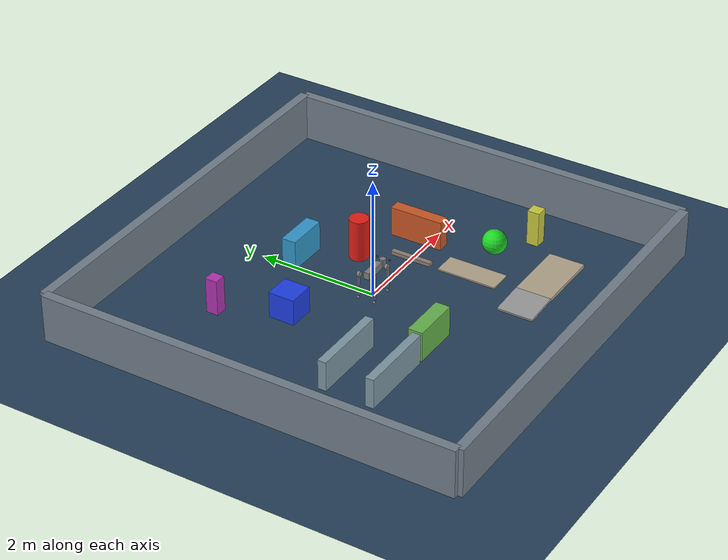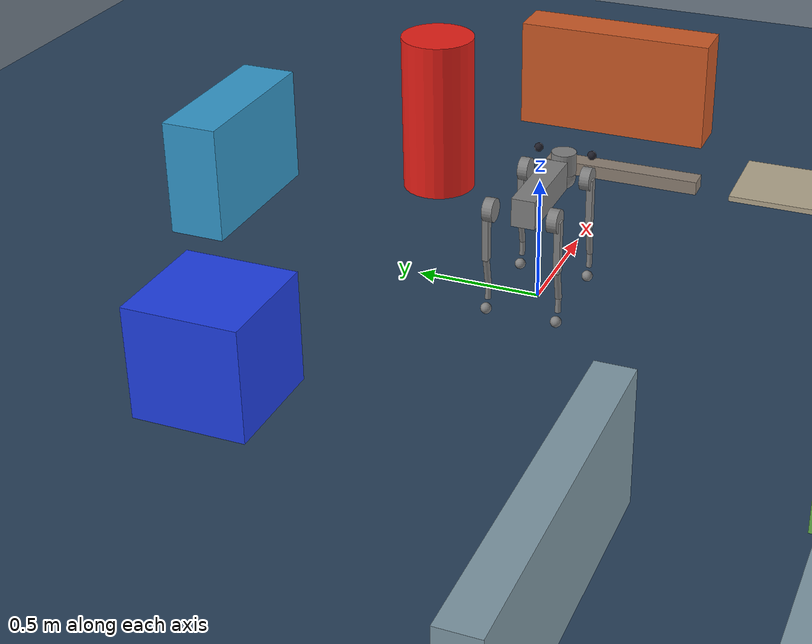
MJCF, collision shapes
<?xml version='1.0' encoding='utf-8'?>
<mujoco model="Born Wired - sensory arena">
  <compiler angle="radian" meshdir="unitree_go2/assets" autolimits="true" />
  <option cone="elliptic" impratio="100" />
  <default>
    <default class="go2">
      <geom friction="0.6" margin="0.001" condim="1" />
      <joint axis="0 1 0" damping="2" armature="0.01" frictionloss="0.2" />
      <motor ctrlrange="-23.7 23.7" />
      <default class="abduction">
        <joint axis="1 0 0" range="-1.0472 1.0472" />
      </default>
      <default class="hip">
        <default class="front_hip">
          <joint range="-1.5708 3.4907" />
        </default>
        <default class="back_hip">
          <joint range="-0.5236 4.5379" />
        </default>
      </default>
      <default class="knee">
        <joint range="-2.7227 -0.83776" />
        <motor ctrlrange="-45.43 45.43" />
      </default>
      <default class="visual">
        <geom type="mesh" contype="0" conaffinity="0" group="2" />
      </default>
      <default class="collision">
        <geom group="3" />
        <default class="foot">
          <geom size="0.022" pos="-0.002 0 -0.213" priority="1" solimp="0.015 1 0.022" condim="6" friction="0.8 0.02 0.01" />
        </default>
      </default>
    </default>
  </default>
  <asset>
    <material name="metal" rgba=".9 .95 .95 1" />
    <material name="black" rgba="0 0 0 1" />
    <material name="white" rgba="1 1 1 1" />
    <material name="gray" rgba="0.671705 0.692426 0.774270 1" />
    <mesh file="base_0.obj" />
    <mesh file="base_1.obj" />
    <mesh file="base_2.obj" />
    <mesh file="base_3.obj" />
    <mesh file="base_4.obj" />
    <mesh file="hip_0.obj" />
    <mesh file="hip_1.obj" />
    <mesh file="thigh_0.obj" />
    <mesh file="thigh_1.obj" />
    <mesh file="thigh_mirror_0.obj" />
    <mesh file="thigh_mirror_1.obj" />
    <mesh file="calf_0.obj" />
    <mesh file="calf_1.obj" />
    <mesh file="calf_mirror_0.obj" />
    <mesh file="calf_mirror_1.obj" />
    <mesh file="foot.obj" />
    <texture type="skybox" builtin="gradient" rgb1="0.3 0.5 0.7" rgb2="0 0 0" width="512" height="3072" />
    <texture type="2d" name="groundplane" builtin="checker" mark="edge" rgb1="0.2 0.3 0.4" rgb2="0.1 0.2 0.3" markrgb="0.8 0.8 0.8" width="300" height="300" />
    <material name="groundplane" texture="groundplane" texuniform="true" texrepeat="5 5" reflectance="0.2" />
    <texture name="irregular" type="2d" file="stereo_texture.png" />
    <material name="textured" texture="irregular" texrepeat="1 1" texuniform="false" />
    <texture name="qrwall" type="2d" file="wall_qr.png" />
    <material name="qrwall" texture="qrwall" texrepeat="1 1" texuniform="false" />
  </asset>
  <worldbody>
    <body name="base" pos="0 0 0.445" childclass="go2">
      <inertial pos="0.021112 0 -0.005366" quat="-0.000543471 0.713435 -0.00173769 0.700719" mass="6.921" diaginertia="0.107027 0.0980771 0.0244531" />
      <freejoint />
      <geom mesh="base_0" material="black" class="visual" />
      <geom mesh="base_1" material="black" class="visual" />
      <geom mesh="base_2" material="black" class="visual" />
      <geom mesh="base_3" material="white" class="visual" />
      <geom mesh="base_4" material="gray" class="visual" />
      <geom size="0.1881 0.04675 0.057" type="box" class="collision" />
      <geom size="0.05 0.045" pos="0.285 0 0.01" type="cylinder" class="collision" />
      <geom size="0.047" pos="0.293 0 -0.06" class="collision" />
      <site name="imu" pos="-0.02557 0 0.04232" />
      <body name="FL_hip" pos="0.1934 0.0465 0">
        <inertial pos="-0.0054 0.00194 -0.000105" quat="0.497014 0.499245 0.505462 0.498237" mass="0.678" diaginertia="0.00088403 0.000596003 0.000479967" />
        <joint name="FL_hip_joint" class="abduction" />
        <geom mesh="hip_0" material="metal" class="visual" />
        <geom mesh="hip_1" material="gray" class="visual" />
        <geom size="0.046 0.02" pos="0 0.08 0" quat="1 1 0 0" type="cylinder" class="collision" />
        <body name="FL_thigh" pos="0 0.0955 0">
          <inertial pos="-0.00374 -0.0223 -0.0327" quat="0.829533 0.0847635 -0.0200632 0.551623" mass="1.152" diaginertia="0.00594973 0.00584149 0.000878787" />
          <joint name="FL_thigh_joint" class="front_hip" />
          <geom mesh="thigh_0" material="metal" class="visual" />
          <geom mesh="thigh_1" material="gray" class="visual" />
          <geom size="0.1065 0.01225 0.017" pos="0 0 -0.1065" quat="0.707107 0 0.707107 0" type="box" class="collision" />
          <body name="FL_calf" pos="0 0 -0.213">
            <inertial pos="0.00629595 -0.000622121 -0.141417" quat="0.710672 0.00154099 -0.00450087 0.703508" mass="0.241352" diaginertia="0.0014901 0.00146356 5.31397e-05" />
            <joint name="FL_calf_joint" class="knee" />
            <geom mesh="calf_0" material="gray" class="visual" />
            <geom mesh="calf_1" material="black" class="visual" />
            <geom size="0.012 0.06" pos="0.008 0 -0.06" quat="0.994493 0 -0.104807 0" type="cylinder" class="collision" />
            <geom size="0.011 0.0325" pos="0.02 0 -0.148" quat="0.999688 0 0.0249974 0" type="cylinder" class="collision" />
            <geom pos="0 0 -0.213" mesh="foot" class="visual" material="black" />
            <geom name="FL" class="foot" />
          </body>
        </body>
      </body>
      <body name="FR_hip" pos="0.1934 -0.0465 0">
        <inertial pos="-0.0054 -0.00194 -0.000105" quat="0.498237 0.505462 0.499245 0.497014" mass="0.678" diaginertia="0.00088403 0.000596003 0.000479967" />
        <joint name="FR_hip_joint" class="abduction" />
        <geom mesh="hip_0" material="metal" class="visual" quat="4.63268e-05 1 0 0" />
        <geom mesh="hip_1" material="gray" class="visual" quat="4.63268e-05 1 0 0" />
        <geom size="0.046 0.02" pos="0 -0.08 0" quat="0.707107 0.707107 0 0" type="cylinder" class="collision" />
        <body name="FR_thigh" pos="0 -0.0955 0">
          <inertial pos="-0.00374 0.0223 -0.0327" quat="0.551623 -0.0200632 0.0847635 0.829533" mass="1.152" diaginertia="0.00594973 0.00584149 0.000878787" />
          <joint name="FR_thigh_joint" class="front_hip" />
          <geom mesh="thigh_mirror_0" material="metal" class="visual" />
          <geom mesh="thigh_mirror_1" material="gray" class="visual" />
          <geom size="0.1065 0.01225 0.017" pos="0 0 -0.1065" quat="0.707107 0 0.707107 0" type="box" class="collision" />
          <body name="FR_calf" pos="0 0 -0.213">
            <inertial pos="0.00629595 0.000622121 -0.141417" quat="0.703508 -0.00450087 0.00154099 0.710672" mass="0.241352" diaginertia="0.0014901 0.00146356 5.31397e-05" />
            <joint name="FR_calf_joint" class="knee" />
            <geom mesh="calf_mirror_0" material="gray" class="visual" />
            <geom mesh="calf_mirror_1" material="black" class="visual" />
            <geom size="0.013 0.06" pos="0.01 0 -0.06" quat="0.995004 0 -0.0998334 0" type="cylinder" class="collision" />
            <geom size="0.011 0.0325" pos="0.02 0 -0.148" quat="0.999688 0 0.0249974 0" type="cylinder" class="collision" />
            <geom pos="0 0 -0.213" mesh="foot" class="visual" material="black" />
            <geom name="FR" class="foot" />
          </body>
        </body>
      </body>
      <body name="RL_hip" pos="-0.1934 0.0465 0">
        <inertial pos="0.0054 0.00194 -0.000105" quat="0.505462 0.498237 0.497014 0.499245" mass="0.678" diaginertia="0.00088403 0.000596003 0.000479967" />
        <joint name="RL_hip_joint" class="abduction" />
        <geom mesh="hip_0" material="metal" class="visual" quat="4.63268e-05 0 1 0" />
        <geom mesh="hip_1" material="gray" class="visual" quat="4.63268e-05 0 1 0" />
        <geom size="0.046 0.02" pos="0 0.08 0" quat="0.707107 0.707107 0 0" type="cylinder" class="collision" />
        <body name="RL_thigh" pos="0 0.0955 0">
          <inertial pos="-0.00374 -0.0223 -0.0327" quat="0.829533 0.0847635 -0.0200632 0.551623" mass="1.152" diaginertia="0.00594973 0.00584149 0.000878787" />
          <joint name="RL_thigh_joint" class="back_hip" />
          <geom mesh="thigh_0" material="metal" class="visual" />
          <geom mesh="thigh_1" material="gray" class="visual" />
          <geom size="0.1065 0.01225 0.017" pos="0 0 -0.1065" quat="0.707107 0 0.707107 0" type="box" class="collision" />
          <body name="RL_calf" pos="0 0 -0.213">
            <inertial pos="0.00629595 -0.000622121 -0.141417" quat="0.710672 0.00154099 -0.00450087 0.703508" mass="0.241352" diaginertia="0.0014901 0.00146356 5.31397e-05" />
            <joint name="RL_calf_joint" class="knee" />
            <geom mesh="calf_0" material="gray" class="visual" />
            <geom mesh="calf_1" material="black" class="visual" />
            <geom size="0.013 0.06" pos="0.01 0 -0.06" quat="0.995004 0 -0.0998334 0" type="cylinder" class="collision" />
            <geom size="0.011 0.0325" pos="0.02 0 -0.148" quat="0.999688 0 0.0249974 0" type="cylinder" class="collision" />
            <geom pos="0 0 -0.213" mesh="foot" class="visual" material="black" />
            <geom name="RL" class="foot" />
          </body>
        </body>
      </body>
      <body name="RR_hip" pos="-0.1934 -0.0465 0">
        <inertial pos="0.0054 -0.00194 -0.000105" quat="0.499245 0.497014 0.498237 0.505462" mass="0.678" diaginertia="0.00088403 0.000596003 0.000479967" />
        <joint name="RR_hip_joint" class="abduction" />
        <geom mesh="hip_0" material="metal" class="visual" quat="2.14617e-09 4.63268e-05 4.63268e-05 -1" />
        <geom mesh="hip_1" material="gray" class="visual" quat="2.14617e-09 4.63268e-05 4.63268e-05 -1" />
        <geom size="0.046 0.02" pos="0 -0.08 0" quat="0.707107 0.707107 0 0" type="cylinder" class="collision" />
        <body name="RR_thigh" pos="0 -0.0955 0">
          <inertial pos="-0.00374 0.0223 -0.0327" quat="0.551623 -0.0200632 0.0847635 0.829533" mass="1.152" diaginertia="0.00594973 0.00584149 0.000878787" />
          <joint name="RR_thigh_joint" class="back_hip" />
          <geom mesh="thigh_mirror_0" material="metal" class="visual" />
          <geom mesh="thigh_mirror_1" material="gray" class="visual" />
          <geom size="0.1065 0.01225 0.017" pos="0 0 -0.1065" quat="0.707107 0 0.707107 0" type="box" class="collision" />
          <body name="RR_calf" pos="0 0 -0.213">
            <inertial pos="0.00629595 0.000622121 -0.141417" quat="0.703508 -0.00450087 0.00154099 0.710672" mass="0.241352" diaginertia="0.0014901 0.00146356 5.31397e-05" />
            <joint name="RR_calf_joint" class="knee" />
            <geom mesh="calf_mirror_0" material="gray" class="visual" />
            <geom mesh="calf_mirror_1" material="black" class="visual" />
            <geom size="0.013 0.06" pos="0.01 0 -0.06" quat="0.995004 0 -0.0998334 0" type="cylinder" class="collision" />
            <geom size="0.011 0.0325" pos="0.02 0 -0.148" quat="0.999688 0 0.0249974 0" type="cylinder" class="collision" />
            <geom pos="0 0 -0.213" mesh="foot" class="visual" material="black" />
            <geom name="RR" class="foot" />
          </body>
        </body>
      </body>
      <body name="eye_left" pos=".30 0.11 .05">
        <joint name="eye_left_yaw_joint" type="hinge" axis="0 0 1" range="-.6 .6" damping=".06" armature=".001" frictionloss="0" />
        <joint name="eye_left_pitch_joint" type="hinge" axis="0 1 0" range="-.45 .45" damping=".06" armature=".001" frictionloss="0" />
        <geom name="eye_left_ball" type="sphere" size=".018" density="800" contype="0" conaffinity="0" group="2" rgba=".12 .12 .16 1" />
        <camera name="eye_left" pos="0 0 0" quat="-0.5 -0.5 0.5 0.5" fovy="60" />
      </body>
      <body name="eye_right" pos=".30 -0.11 .05">
        <joint name="eye_right_yaw_joint" type="hinge" axis="0 0 1" range="-.6 .6" damping=".06" armature=".001" frictionloss="0" />
        <joint name="eye_right_pitch_joint" type="hinge" axis="0 1 0" range="-.45 .45" damping=".06" armature=".001" frictionloss="0" />
        <geom name="eye_right_ball" type="sphere" size=".018" density="800" contype="0" conaffinity="0" group="2" rgba=".12 .12 .16 1" />
        <camera name="eye_right" pos="0 0 0" quat="-0.5 -0.5 0.5 0.5" fovy="60" />
      </body>
    </body>
    <light pos="0 0 1.5" dir="0 0 -1" directional="true" />
    <geom name="floor" size="0 0 0.05" type="plane" material="groundplane" />
    <geom name="front_block" type="box" pos="1.7 .20 .25" size=".10 .45 .25" rgba=".8 .35 .15 1" material="qrwall" />
    <geom name="left_block" type="box" pos=".3 1.5 .25" size=".35 .12 .25" rgba=".2 .6 .8 1" material="qrwall" />
    <geom name="right_block" type="box" pos="-.7 -1.4 .25" size=".4 .12 .25" rgba=".4 .7 .3 1" material="qrwall" />
    <geom name="east_wall" type="box" pos="3.5 0 .4" size=".08 3.5 .4" rgba=".45 .5 .55 1" material="qrwall" />
    <geom name="west_wall" type="box" pos="-3.5 0 .4" size=".08 3.5 .4" rgba=".45 .5 .55 1" material="qrwall" />
    <geom name="north_wall" type="box" pos="0 3.5 .4" size="3.5 .08 .4" rgba=".45 .5 .55 1" material="qrwall" />
    <geom name="south_wall" type="box" pos="0 -3.5 .4" size="3.5 .08 .4" rgba=".45 .5 .55 1" material="qrwall" />
    <geom name="green_target" type="sphere" pos="2 -1 .20" size=".20" rgba=".12 .85 .15 1" material="textured" />
    <geom name="red_pillar" type="cylinder" pos=".8 .75 .35" size=".16 .35" rgba=".9 .12 .09 1" material="textured" />
    <geom name="blue_box" type="box" pos="-1.1 .8 .22" size=".22 .22 .22" rgba=".12 .25 .9 1" material="textured" />
    <geom name="sound_low" type="box" pos="2.6 -1.4 .3" size=".10 .10 .3" rgba=".8 .8 .25 1" material="textured" />
    <geom name="sound_high" type="box" pos="-1.6 1.8 .3" size=".10 .10 .3" rgba=".7 .2 .7 1" material="textured" />
    <geom name="low_step" type="box" pos="1.3 -1 .012" size=".20 .5 .012" rgba=".7 .65 .55 1" material="textured" />
    <geom name="curb" type="box" pos="1.15 0 .03" size=".045 .35 .03" rgba=".55 .5 .45 1" material="textured" />
    <geom name="platform" type="box" pos="1.8 -2.1 .028" size=".55 .3 .028" rgba=".7 .65 .55 1" material="textured" />
    <geom name="ramp" type="box" pos=".95 -2.1 .018" size=".3 .3 .02" euler="0 -0.06 0" rgba=".6 .6 .6 1" material="textured" />
    <geom name="passage_a" type="box" pos="-1.8 -.65 .25" size=".65 .07 .25" rgba=".5 .6 .65 1" material="textured" />
    <geom name="passage_b" type="box" pos="-1.8 -1.45 .25" size=".65 .07 .25" rgba=".5 .6 .65 1" material="textured" />
  </worldbody>
  <actuator>
    <motor class="abduction" name="FL_hip" joint="FL_hip_joint" />
    <motor class="hip" name="FL_thigh" joint="FL_thigh_joint" />
    <motor class="knee" name="FL_calf" joint="FL_calf_joint" />
    <motor class="abduction" name="FR_hip" joint="FR_hip_joint" />
    <motor class="hip" name="FR_thigh" joint="FR_thigh_joint" />
    <motor class="knee" name="FR_calf" joint="FR_calf_joint" />
    <motor class="abduction" name="RL_hip" joint="RL_hip_joint" />
    <motor class="hip" name="RL_thigh" joint="RL_thigh_joint" />
    <motor class="knee" name="RL_calf" joint="RL_calf_joint" />
    <motor class="abduction" name="RR_hip" joint="RR_hip_joint" />
    <motor class="hip" name="RR_thigh" joint="RR_thigh_joint" />
    <motor class="knee" name="RR_calf" joint="RR_calf_joint" />
    <position name="eye_left_yaw" joint="eye_left_yaw_joint" kp="1.2" kv=".05" />
    <position name="eye_left_pitch" joint="eye_left_pitch_joint" kp="1.2" kv=".05" />
    <position name="eye_right_yaw" joint="eye_right_yaw_joint" kp="1.2" kv=".05" />
    <position name="eye_right_pitch" joint="eye_right_pitch_joint" kp="1.2" kv=".05" />
  </actuator>
  <keyframe>
    <key name="home" qpos="0 0 0.27 1 0 0 0 0 0.9 -1.8 0 0.9 -1.8 0 0.9 -1.8 0 0.9 -1.8 0 0 0 0" ctrl="0 0.9 -1.8 0 0.9 -1.8 0 0.9 -1.8 0 0.9 -1.8 0 0 0 0" />
  </keyframe>
  <visual>
    <headlight diffuse="0.6 0.6 0.6" ambient="0.3 0.3 0.3" specular="0 0 0" />
    <rgba haze="0.15 0.25 0.35 1" />
    <global azimuth="-130" elevation="-20" offwidth="1280" offheight="1024" />
  </visual>
</mujoco>
